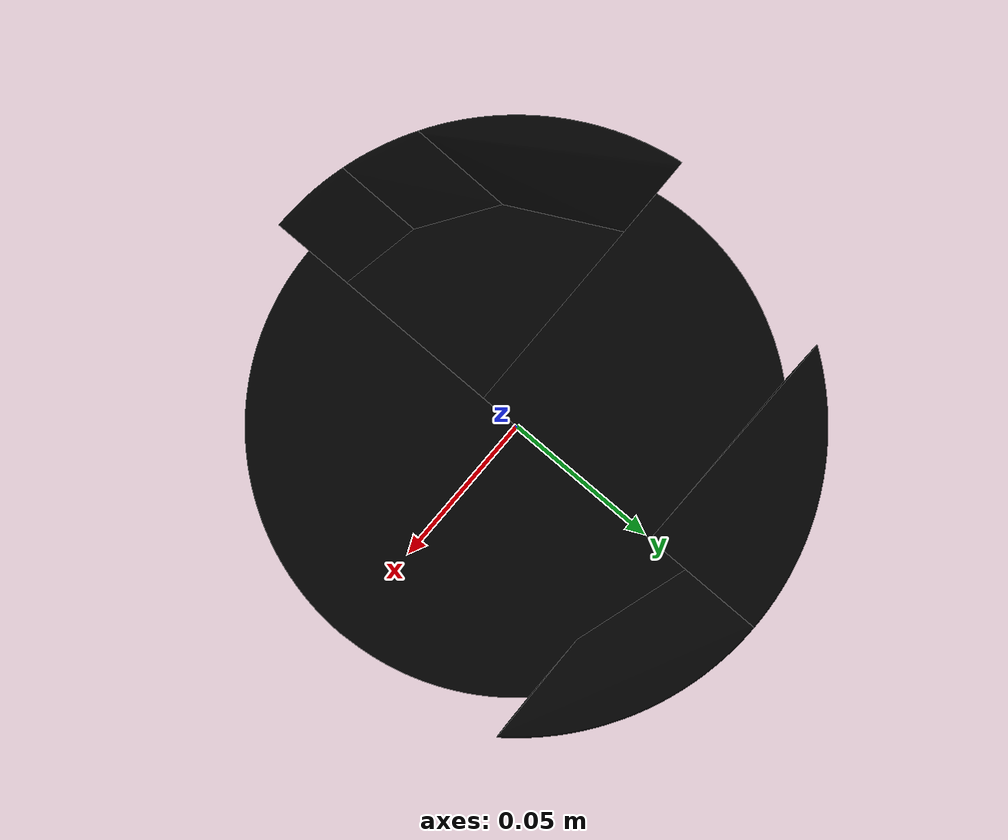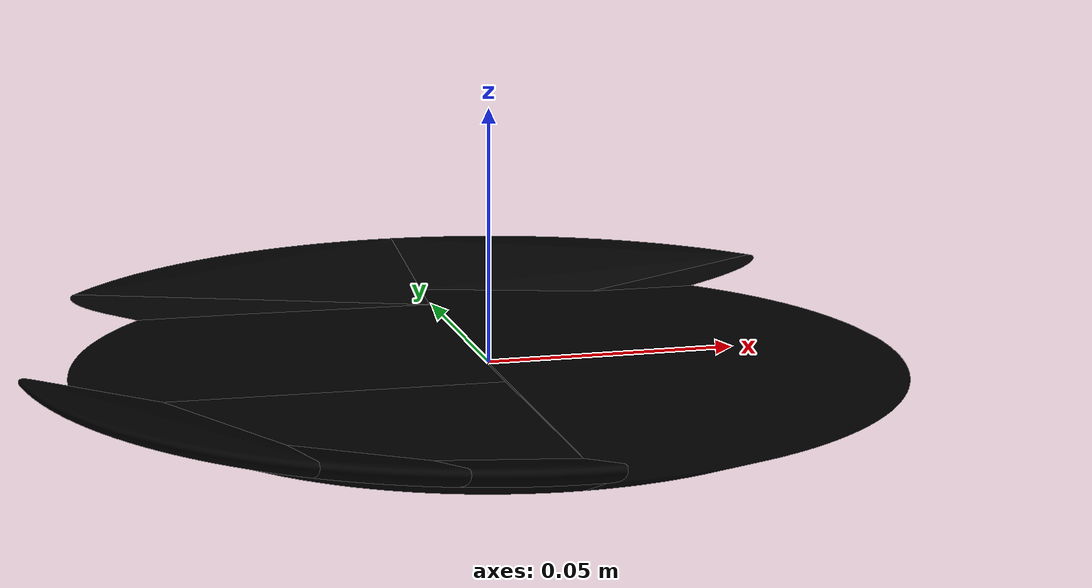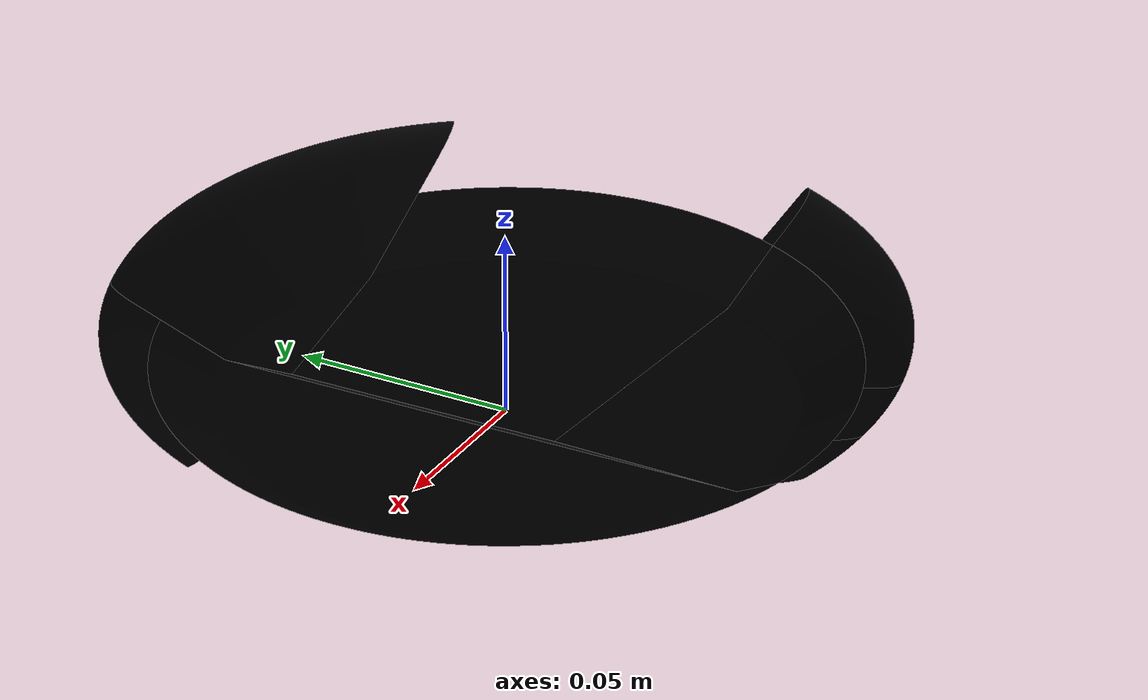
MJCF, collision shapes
<mujoco model="plate_3">
  <asset>
    <mesh file="visual/model_normalized_0.obj" name="model_normalized_0_vis" scale="0.185 0.185 0.185" refquat="1.0 0.0 0.0 0.0" />
    <texture type="2d" name="image0" file="visual/image0.png" />
    <material name="initialShadingGroup.034" texture="image0" specular="0.5" shininess="0.25" />
    <mesh file="collision/model_collision_0.obj" name="model_collision_0" scale="0.185 0.185 0.185" refquat="1.0 0.0 0.0 0.0" />
    <mesh file="collision/model_collision_1.obj" name="model_collision_1" scale="0.185 0.185 0.185" refquat="1.0 0.0 0.0 0.0" />
    <mesh file="collision/model_collision_2.obj" name="model_collision_2" scale="0.185 0.185 0.185" refquat="1.0 0.0 0.0 0.0" />
    <mesh file="collision/model_collision_3.obj" name="model_collision_3" scale="0.185 0.185 0.185" refquat="1.0 0.0 0.0 0.0" />
    <mesh file="collision/model_collision_4.obj" name="model_collision_4" scale="0.185 0.185 0.185" refquat="1.0 0.0 0.0 0.0" />
    <mesh file="collision/model_collision_5.obj" name="model_collision_5" scale="0.185 0.185 0.185" refquat="1.0 0.0 0.0 0.0" />
    <mesh file="collision/model_collision_6.obj" name="model_collision_6" scale="0.185 0.185 0.185" refquat="1.0 0.0 0.0 0.0" />
    <mesh file="collision/model_collision_7.obj" name="model_collision_7" scale="0.185 0.185 0.185" refquat="1.0 0.0 0.0 0.0" />
  </asset>
  <default>
    <default class="region">
      <geom group="1" conaffinity="0" contype="0" rgba="0 1 0 0" />
    </default>
  </default>
  <worldbody>
    <body>
      <body name="object">
        <geom density="0" type="mesh" mesh="model_normalized_0_vis" conaffinity="0" contype="0" group="2" material="initialShadingGroup.034" mass="0.075" />
        <geom class="region" name="reg_bbox" type="box" pos="2.7749999985393624e-09 -2.7749999985393624e-09 -9.435000000003815e-07" size="0.0907374236 0.09073733849999999 0.009947864399999999" />
        <geom solimp="0.998 0.998 0.001" solref="0.004 1" density="0" friction="0.6 0.03 0.003" type="mesh" group="3" rgba="0 0 0 0" mesh="model_collision_0" condim="6" priority="1" />
        <geom solimp="0.998 0.998 0.001" solref="0.004 1" density="0" friction="0.6 0.03 0.003" type="mesh" group="3" rgba="0 0 0 0" mesh="model_collision_1" condim="6" priority="1" />
        <geom solimp="0.998 0.998 0.001" solref="0.004 1" density="0" friction="0.6 0.03 0.003" type="mesh" group="3" rgba="0 0 0 0" mesh="model_collision_2" condim="6" priority="1" />
        <geom solimp="0.998 0.998 0.001" solref="0.004 1" density="0" friction="0.6 0.03 0.003" type="mesh" group="3" rgba="0 0 0 0" mesh="model_collision_3" condim="6" priority="1" />
        <geom solimp="0.998 0.998 0.001" solref="0.004 1" density="0" friction="0.6 0.03 0.003" type="mesh" group="3" rgba="0 0 0 0" mesh="model_collision_4" condim="6" priority="1" />
        <geom solimp="0.998 0.998 0.001" solref="0.004 1" density="0" friction="0.6 0.03 0.003" type="mesh" group="3" rgba="0 0 0 0" mesh="model_collision_5" condim="6" priority="1" />
        <geom solimp="0.998 0.998 0.001" solref="0.004 1" density="0" friction="0.6 0.03 0.003" type="mesh" group="3" rgba="0 0 0 0" mesh="model_collision_6" condim="6" priority="1" />
        <geom solimp="0.998 0.998 0.001" solref="0.004 1" density="0" friction="0.6 0.03 0.003" type="mesh" group="3" rgba="0 0 0 0" mesh="model_collision_7" condim="6" priority="1" />
      </body>
    </body>
  </worldbody>
</mujoco>
